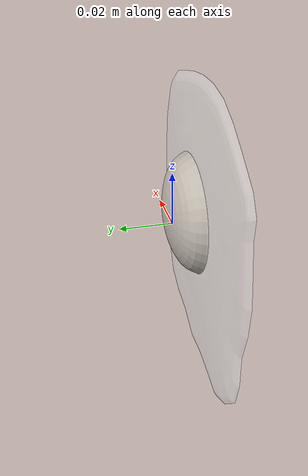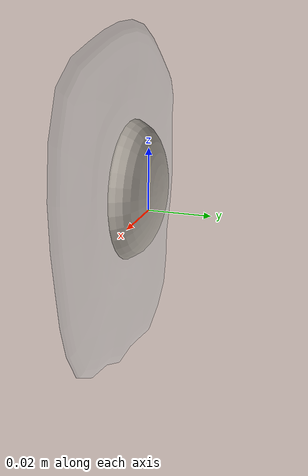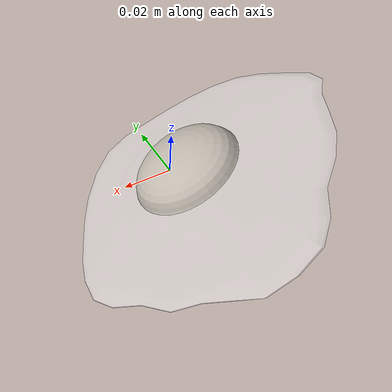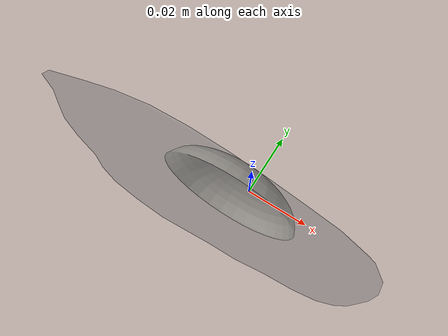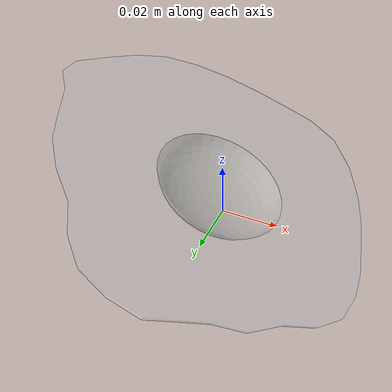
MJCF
<mujoco model="Egg_Cracked_8">
  <compiler autolimits="true" boundmass="0.01" angle="radian"/>
  <default>
    <default class="/">
      <default class="__VISUAL_MJT__">
        <geom contype="0" conaffinity="0" group="0"/>
      </default>
      <default class="__STRUCTURAL_MJT__">
        <geom contype="8" conaffinity="15" group="4" friction="0.90000000000000002 0.90000000000000002 0.001" solref="0.025000000000000001 1" solimp="0.998 0.998 0.001"/>
      </default>
      <default class="__DYNAMIC_MJT__">
        <geom contype="1" conaffinity="15" group="4" friction="0.90000000000000002 0.90000000000000002 0.001" solref="0.025000000000000001 1" solimp="0.998 0.998 0.001"/>
      </default>
    </default>
  </default>
  <asset>
    <texture name="Fried_Egg_White_Uncooked_Mat" type="2d" file="Fried_Egg_AlbedoTransparency.png"/>
    <material name="material_Fried_Egg_White_Uncooked_Mat" class="/" texture="Fried_Egg_White_Uncooked_Mat" specular="0.5" shininess="0.5" rgba="1 1 1 0.5"/>
    <texture name="Fried_Egg_Yolk_Mat" type="2d" file="Fried_Egg_AlbedoTransparency.png"/>
    <material name="material_Fried_Egg_Yolk_Mat" class="/" texture="Fried_Egg_Yolk_Mat" specular="0.5" shininess="0.5" rgba="1 1 1 1"/>
    <mesh name="Egg_Cracked_8_fried_egg_8_0" class="/" file="Egg_Cracked_8_fried_egg_8/Egg_Cracked_8_fried_egg_8_0.obj" scale="1 1 1"/>
    <mesh name="Egg_Cracked_8_fried_egg_8_1" class="/" file="Egg_Cracked_8_fried_egg_8/Egg_Cracked_8_fried_egg_8_1.obj" scale="1 1 1"/>
  </asset>
  <worldbody>
    <body name="Egg_Cracked_8">
      <joint name="Egg_Cracked_8_free" class="/" type="free" pos="0 0 0" axis="0 0 1" stiffness="0" range="0 0" armature="0" damping="0.10000000000000001" frictionloss="0"/>
      <body name="Egg_Cracked_8_fried_egg_8" pos="-0.0035999999999999999 -0.01023 0.00545" quat="1 0 0 0">
        <geom name="Egg_Cracked_8_fried_egg_8_0" class="__VISUAL_MJT__" type="mesh" material="material_Fried_Egg_White_Uncooked_Mat" shellinertia="false" mesh="Egg_Cracked_8_fried_egg_8_0"/>
        <geom name="Egg_Cracked_8_fried_egg_8_1" class="__VISUAL_MJT__" type="mesh" material="material_Fried_Egg_Yolk_Mat" shellinertia="false" mesh="Egg_Cracked_8_fried_egg_8_1"/>
        <geom name="Egg_Cracked_8_PrimitiveCollider_0" class="__DYNAMIC_MJT__" type="box" size="0.055967293679714203 0.010231256484985352 0.058309197425842285" rgba="0 1 0 1" pos="-0.0035965815186500549 0.010231256484985352 -0.0054527521133422852" quat="1 0 0 0"/>
      </body>
    </body>
  </worldbody>
</mujoco>
